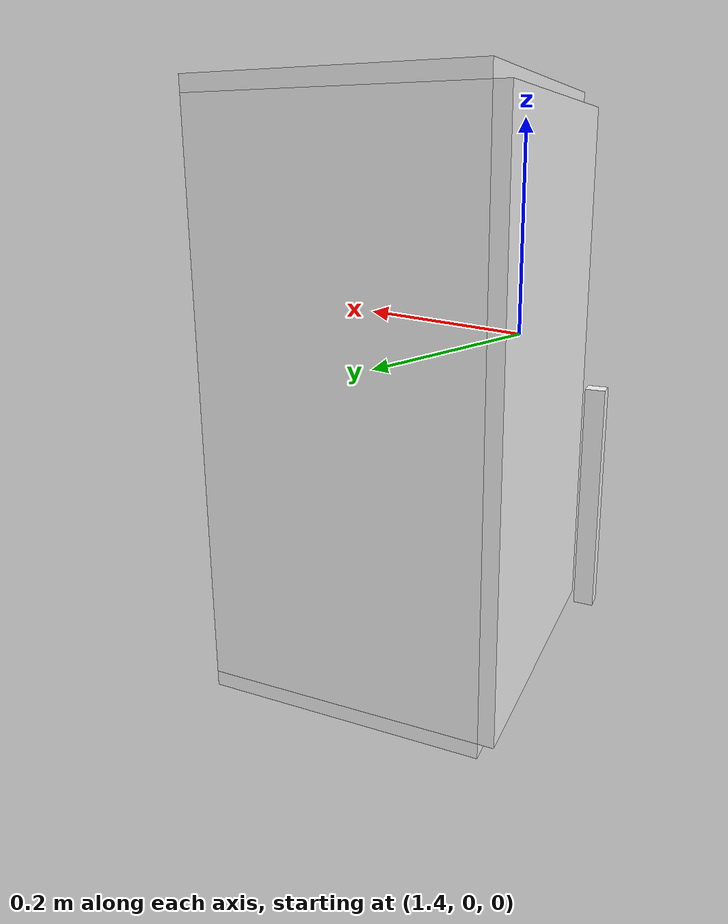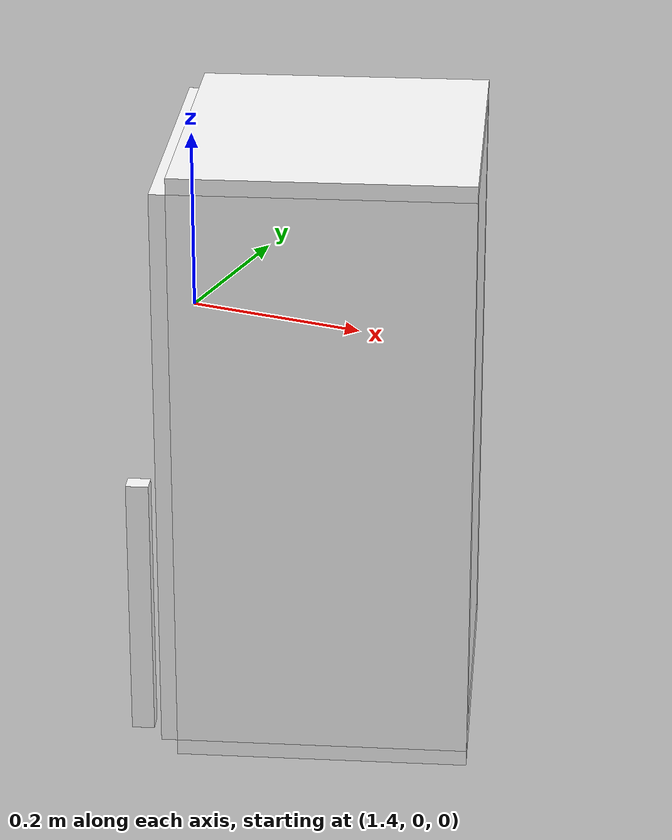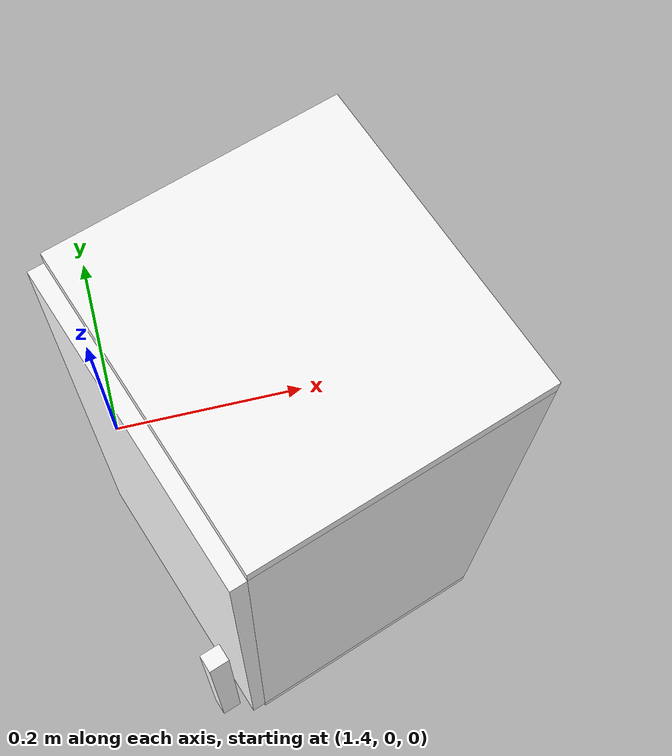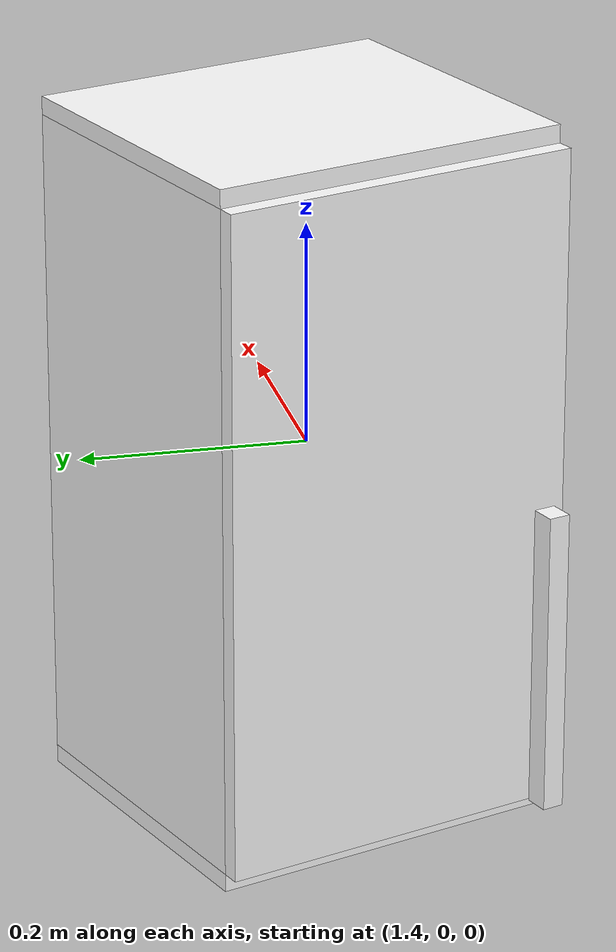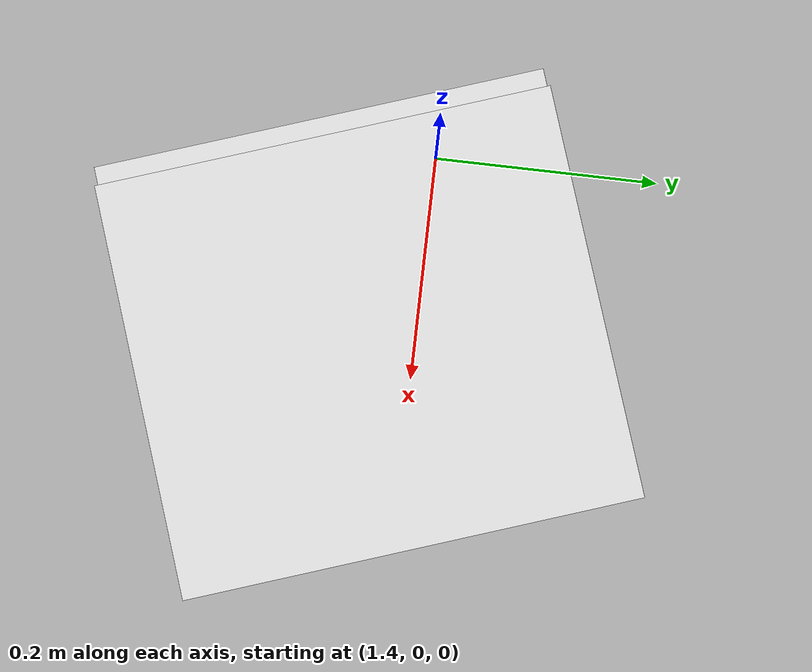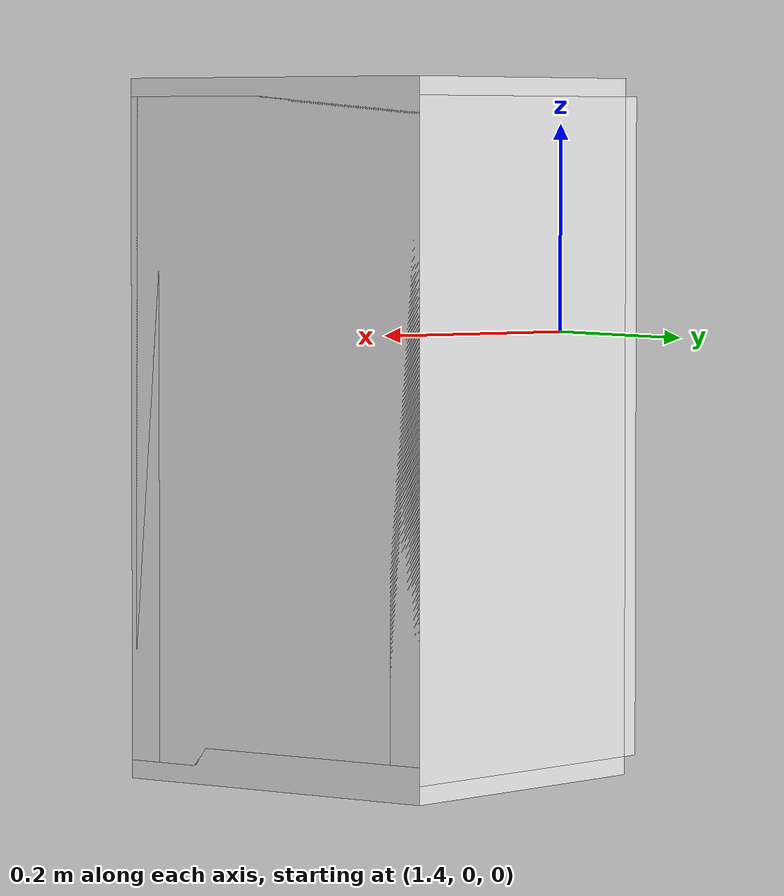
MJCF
<mujoco model="cabinet">
    <compiler angle="radian" eulerseq='zxy' />
    <option gravity = "0 0 0" />
    <option>
        <flag contact = "disable"/>
    </option>
    <statistic	extent="1.0" center="0.0 0.0 0.0"/>
    <visual>
        <map fogstart="3" fogend="5" force="0.1" znear=" 0.100000 " zfar=" 12.000000 "/>
    </visual>
    <size njmax="500" nconmax="100" />
    <actuator>
        <velocity joint="bottom_left_hinge" name="viva_revolution" kv='10'></velocity>
    </actuator>
    <asset>
        <texture builtin="flat" name="tabletex" height="32" width="32" rgb1="1 1 1" type="cube"></texture>
        <texture builtin="flat" name="objtex" height="32" width="32" rgb1="1 1 1" type="cube"></texture>
        <texture builtin="flat" name="handletex" height="32" width="32" rgb1="1 1 1" type="cube"></texture>
        <texture builtin="flat" name="wallpaper" height="32" width="32" rgb1="1 1 1" type="cube"></texture>
        <material name="geomTable" shininess="0.03" specular="0.75" texture="tabletex"></material>
        <material name="geomObj" shininess="0.03" specular="0.75" texture="objtex"></material>
        <material name="geomHandle" shininess="0.03" specular="0.75" texture="handletex"></material>
        <material name="bg" shininess="0.03" specular="0.75" texture="wallpaper"></material>
    </asset>
    <worldbody>
            <body name="cabinet_bottom" pos= " 1.584690 -0.034458 -0.404147 "  quat= " -0.165360 0.000000 0.000000 0.986233" >
                <inertial pos="0 0 0" mass="1" diaginertia="1 1 1" />
                <geom size= " 0.157452 0.174490 0.017311 "  type="box" material="geomObj" name="b"/>
                <body name="cabinet_left" pos= " 0.000000 -0.157180 0.314916 " >
                    <inertial pos="0 0 0" mass="1" diaginertia="1 1 1" />
                    <geom size= " 0.157452 0.017311 0.314916 "  type="box" material="geomObj" name="c" />
                </body>
                <body name="cabinet_right" pos= " 0.000000 0.157180 0.314916 " >
                    <inertial pos="0 0 0" mass="1" diaginertia="1 1 1" />
                    <geom size= " 0.157452 0.017311 0.314916 "  type="box" material="geomObj" name="d" />
                </body>
                <body name="cabinet_top" pos= " 0.000000 0.000000 0.629832 " >
                    <inertial pos="0 0 0" mass="1" diaginertia="1 1 1" />
                    <geom size= " 0.157452 0.174490 0.017311 "  type="box" material="geomObj" name="e"/>
                </body>
                <body name="cabinet_back" pos= " -0.140141 0.000000 0.314916 "  >
                    <inertial pos="0 0 0" mass="1" diaginertia="1 1 1" />
                    <geom size= " 0.017311 0.174490 0.314916 "  type="box" material="geomObj" name="f" />
                </body>
                <body name="cabinet_left_hinge" pos= " 0.157452 -0.174490 0.314916 " >
                    <inertial pos= " 0.000000 0.174490 0.000000 "  mass="1" diaginertia="1 1 1" />
                    <joint name="bottom_left_hinge" type="hinge" pos="0 0 0" axis="0 0 1" limited="true" range= "-2.3 0"  />
                    <geom size= " 0.017311 0.174490 0.314916 "  pos= " 0.000000 0.174490 0.000000 "  type="box" material="geomObj" name="g"/>
                    <body name="handle_link" pos= " 0.039363 0.322205 -0.164768 " >
                        <inertial pos="0 0 0" mass="1" diaginertia="1 1 1" />
                        <geom size= " 0.012220 0.010444 0.145680 "  type="box" material="geomHandle" name="h"/>
                    </body>
                </body>
            </body>
        <body name="external_camera_body_0" pos="0.0 0 0.00">
            <camera euler="-1.57 1.57 0.0" fovy=" 54.280851 " name="external_camera_0" pos="0.0 0 0"></camera>
            <inertial pos= " 0.00 0.0 0.000000 " mass="1" diaginertia="1 1 1" />
            <joint name="cam_j" pos="0.0 0 0" axis = "1 0 0" type="free" />
        </body>
    </worldbody>
</mujoco>
